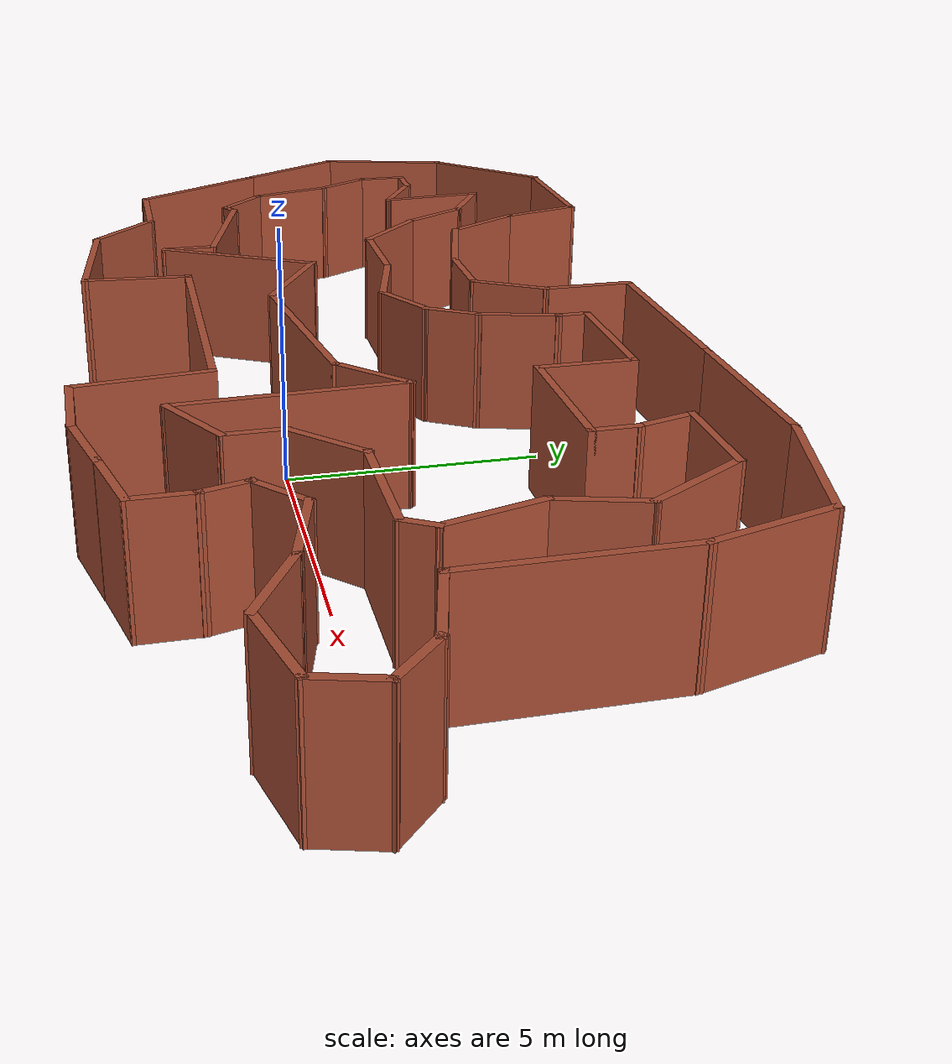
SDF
<?xml version='1.0'?>
<sdf version='1.7'>
  <model name='walls_for_students'>
    <pose>-2.26469 2.38398 0 0 -0 0</pose>
    <link name='Wall_0'>
      <collision name='Wall_0_Collision'>
        <geometry>
          <box>
            <size>2.3605 0.15 2.5</size>
          </box>
        </geometry>
        <pose>0 0 1.25 0 -0 0</pose>
      </collision>
      <visual name='Wall_0_Visual'>
        <pose>0 0 1.25 0 -0 0</pose>
        <geometry>
          <box>
            <size>2.3605 0.15 2.5</size>
          </box>
        </geometry>
        <material>
          <script>
            <uri>file://media/materials/scripts/gazebo.material</uri>
            <name>Gazebo/Bricks</name>
          </script>
          <ambient>1 1 1 1</ambient>
        </material>
        <meta>
          <layer>0</layer>
        </meta>
      </visual>
      <pose>-3.11683 -4.82228 0 0 -0 1.49065</pose>
    </link>
    <link name='Wall_1'>
      <collision name='Wall_1_Collision'>
        <geometry>
          <box>
            <size>5.75 0.15 2.5</size>
          </box>
        </geometry>
        <pose>0 0 1.25 0 -0 0</pose>
      </collision>
      <visual name='Wall_1_Visual'>
        <pose>0 0 1.25 0 -0 0</pose>
        <geometry>
          <box>
            <size>5.75 0.15 2.5</size>
          </box>
        </geometry>
        <material>
          <script>
            <uri>file://media/materials/scripts/gazebo.material</uri>
            <name>Gazebo/Bricks</name>
          </script>
          <ambient>1 1 1 1</ambient>
        </material>
        <meta>
          <layer>0</layer>
        </meta>
      </visual>
      <pose>-0.25784 -3.72058 0 0 -0 0</pose>
    </link>
    <link name='Wall_10'>
      <collision name='Wall_10_Collision'>
        <geometry>
          <box>
            <size>1.75 0.15 2.5</size>
          </box>
        </geometry>
        <pose>0 0 1.25 0 -0 0</pose>
      </collision>
      <visual name='Wall_10_Visual'>
        <pose>0 0 1.25 0 -0 0</pose>
        <geometry>
          <box>
            <size>1.75 0.15 2.5</size>
          </box>
        </geometry>
        <material>
          <script>
            <uri>file://media/materials/scripts/gazebo.material</uri>
            <name>Gazebo/Bricks</name>
          </script>
          <ambient>1 1 1 1</ambient>
        </material>
        <meta>
          <layer>0</layer>
        </meta>
      </visual>
      <pose>10.2515 -3.62415 0 0 -0 -0.523599</pose>
    </link>
    <link name='Wall_11'>
      <collision name='Wall_11_Collision'>
        <geometry>
          <box>
            <size>1.75 0.15 2.5</size>
          </box>
        </geometry>
        <pose>0 0 1.25 0 -0 0</pose>
      </collision>
      <visual name='Wall_11_Visual'>
        <pose>0 0 1.25 0 -0 0</pose>
        <geometry>
          <box>
            <size>1.75 0.15 2.5</size>
          </box>
        </geometry>
        <material>
          <script>
            <uri>file://media/materials/scripts/gazebo.material</uri>
            <name>Gazebo/Bricks</name>
          </script>
          <ambient>1 1 1 1</ambient>
        </material>
        <meta>
          <layer>0</layer>
        </meta>
      </visual>
      <pose>11.717 -3.8171 0 0 -0 0.261799</pose>
    </link>
    <link name='Wall_12'>
      <collision name='Wall_12_Collision'>
        <geometry>
          <box>
            <size>1.25 0.15 2.5</size>
          </box>
        </geometry>
        <pose>0 0 1.25 0 -0 0</pose>
      </collision>
      <visual name='Wall_12_Visual'>
        <pose>0 0 1.25 0 -0 0</pose>
        <geometry>
          <box>
            <size>1.25 0.15 2.5</size>
          </box>
        </geometry>
        <material>
          <script>
            <uri>file://media/materials/scripts/gazebo.material</uri>
            <name>Gazebo/Bricks</name>
          </script>
          <ambient>1 1 1 1</ambient>
        </material>
        <meta>
          <layer>0</layer>
        </meta>
      </visual>
      <pose>12.6321 -3.07878 0 0 -0 1.309</pose>
    </link>
    <link name='Wall_13'>
      <collision name='Wall_13_Collision'>
        <geometry>
          <box>
            <size>1.25 0.15 2.5</size>
          </box>
        </geometry>
        <pose>0 0 1.25 0 -0 0</pose>
      </collision>
      <visual name='Wall_13_Visual'>
        <pose>0 0 1.25 0 -0 0</pose>
        <geometry>
          <box>
            <size>1.25 0.15 2.5</size>
          </box>
        </geometry>
        <material>
          <script>
            <uri>file://media/materials/scripts/gazebo.material</uri>
            <name>Gazebo/Bricks</name>
          </script>
          <ambient>1 1 1 1</ambient>
        </material>
        <meta>
          <layer>0</layer>
        </meta>
      </visual>
      <pose>12.3855 -2.15862 0 0 -0 2.35619</pose>
    </link>
    <link name='Wall_14'>
      <collision name='Wall_14_Collision'>
        <geometry>
          <box>
            <size>1.75 0.15 2.5</size>
          </box>
        </geometry>
        <pose>0 0 1.25 0 -0 0</pose>
      </collision>
      <visual name='Wall_14_Visual'>
        <pose>0 0 1.25 0 -0 0</pose>
        <geometry>
          <box>
            <size>1.75 0.15 2.5</size>
          </box>
        </geometry>
        <material>
          <script>
            <uri>file://media/materials/scripts/gazebo.material</uri>
            <name>Gazebo/Bricks</name>
          </script>
          <ambient>1 1 1 1</ambient>
        </material>
        <meta>
          <layer>0</layer>
        </meta>
      </visual>
      <pose>11.2239 -1.56265 0 0 -0 2.87979</pose>
    </link>
    <link name='Wall_15'>
      <collision name='Wall_15_Collision'>
        <geometry>
          <box>
            <size>4 0.15 2.5</size>
          </box>
        </geometry>
        <pose>0 0 1.25 0 -0 0</pose>
      </collision>
      <visual name='Wall_15_Visual'>
        <pose>0 0 1.25 0 -0 0</pose>
        <geometry>
          <box>
            <size>4 0.15 2.5</size>
          </box>
        </geometry>
        <material>
          <script>
            <uri>file://media/materials/scripts/gazebo.material</uri>
            <name>Gazebo/Bricks</name>
          </script>
          <ambient>1 1 1 1</ambient>
        </material>
        <meta>
          <layer>0</layer>
        </meta>
      </visual>
      <pose>10.4512 0.569404 0 0 -0 1.5708</pose>
    </link>
    <link name='Wall_16'>
      <collision name='Wall_16_Collision'>
        <geometry>
          <box>
            <size>2.5 0.15 2.5</size>
          </box>
        </geometry>
        <pose>0 0 1.25 0 -0 0</pose>
      </collision>
      <visual name='Wall_16_Visual'>
        <pose>0 0 1.25 0 -0 0</pose>
        <geometry>
          <box>
            <size>2.5 0.15 2.5</size>
          </box>
        </geometry>
        <material>
          <script>
            <uri>file://media/materials/scripts/gazebo.material</uri>
            <name>Gazebo/Bricks</name>
          </script>
          <ambient>1 1 1 1</ambient>
        </material>
        <meta>
          <layer>0</layer>
        </meta>
      </visual>
      <pose>10.147 3.62937 0 0 -0 1.8326</pose>
    </link>
    <link name='Wall_17'>
      <collision name='Wall_17_Collision'>
        <geometry>
          <box>
            <size>3 0.15 2.5</size>
          </box>
        </geometry>
        <pose>0 0 1.25 0 -0 0</pose>
      </collision>
      <visual name='Wall_17_Visual'>
        <pose>0 0 1.25 0 -0 0</pose>
        <geometry>
          <box>
            <size>3 0.15 2.5</size>
          </box>
        </geometry>
        <material>
          <script>
            <uri>file://media/materials/scripts/gazebo.material</uri>
            <name>Gazebo/Bricks</name>
          </script>
          <ambient>1 1 1 1</ambient>
        </material>
        <meta>
          <layer>0</layer>
        </meta>
      </visual>
      <pose>8.46649 5.13315 0 0 -0 2.87979</pose>
    </link>
    <link name='Wall_18'>
      <collision name='Wall_18_Collision'>
        <geometry>
          <box>
            <size>3.75 0.15 2.5</size>
          </box>
        </geometry>
        <pose>0 0 1.25 0 -0 0</pose>
      </collision>
      <visual name='Wall_18_Visual'>
        <pose>0 0 1.25 0 -0 0</pose>
        <geometry>
          <box>
            <size>3.75 0.15 2.5</size>
          </box>
        </geometry>
        <material>
          <script>
            <uri>file://media/materials/scripts/gazebo.material</uri>
            <name>Gazebo/Bricks</name>
          </script>
          <ambient>1 1 1 1</ambient>
        </material>
        <meta>
          <layer>0</layer>
        </meta>
      </visual>
      <pose>5.29004 5.50196 0 0 -0 3.14159</pose>
    </link>
    <link name='Wall_19'>
      <collision name='Wall_19_Collision'>
        <geometry>
          <box>
            <size>4.25 0.15 2.5</size>
          </box>
        </geometry>
        <pose>0 0 1.25 0 -0 0</pose>
      </collision>
      <visual name='Wall_19_Visual'>
        <pose>0 0 1.25 0 -0 0</pose>
        <geometry>
          <box>
            <size>4.25 0.15 2.5</size>
          </box>
        </geometry>
        <material>
          <script>
            <uri>file://media/materials/scripts/gazebo.material</uri>
            <name>Gazebo/Bricks</name>
          </script>
          <ambient>1 1 1 1</ambient>
        </material>
        <meta>
          <layer>0</layer>
        </meta>
      </visual>
      <pose>1.44004 5.50196 0 0 -0 3.14159</pose>
    </link>
    <link name='Wall_2'>
      <collision name='Wall_2_Collision'>
        <geometry>
          <box>
            <size>2.72924 0.15 2.5</size>
          </box>
        </geometry>
        <pose>0 0 1.25 0 -0 0</pose>
      </collision>
      <visual name='Wall_2_Visual'>
        <pose>0 0 1.25 0 -0 0</pose>
        <geometry>
          <box>
            <size>2.72924 0.15 2.5</size>
          </box>
        </geometry>
        <material>
          <script>
            <uri>file://media/materials/scripts/gazebo.material</uri>
            <name>Gazebo/Bricks</name>
          </script>
          <ambient>1 1 1 1</ambient>
        </material>
        <meta>
          <layer>0</layer>
        </meta>
      </visual>
      <pose>2.69567 -5.00422 0 0 -0 -1.47448</pose>
    </link>
    <link name='Wall_20'>
      <collision name='Wall_20_Collision'>
        <geometry>
          <box>
            <size>2 0.15 2.5</size>
          </box>
        </geometry>
        <pose>0 0 1.25 0 -0 0</pose>
      </collision>
      <visual name='Wall_20_Visual'>
        <pose>0 0 1.25 0 -0 0</pose>
        <geometry>
          <box>
            <size>2 0.15 2.5</size>
          </box>
        </geometry>
        <material>
          <script>
            <uri>file://media/materials/scripts/gazebo.material</uri>
            <name>Gazebo/Bricks</name>
          </script>
          <ambient>1 1 1 1</ambient>
        </material>
        <meta>
          <layer>0</layer>
        </meta>
      </visual>
      <pose>-0.609957 4.57696 0 0 -0 -1.5708</pose>
    </link>
    <link name='Wall_21'>
      <collision name='Wall_21_Collision'>
        <geometry>
          <box>
            <size>1.75 0.15 2.5</size>
          </box>
        </geometry>
        <pose>0 0 1.25 0 -0 0</pose>
      </collision>
      <visual name='Wall_21_Visual'>
        <pose>0 0 1.25 0 -0 0</pose>
        <geometry>
          <box>
            <size>1.75 0.15 2.5</size>
          </box>
        </geometry>
        <material>
          <script>
            <uri>file://media/materials/scripts/gazebo.material</uri>
            <name>Gazebo/Bricks</name>
          </script>
          <ambient>1 1 1 1</ambient>
        </material>
        <meta>
          <layer>0</layer>
        </meta>
      </visual>
      <pose>-1.00996 2.95914 0 0 -0 -2.0944</pose>
    </link>
    <link name='Wall_22'>
      <collision name='Wall_22_Collision'>
        <geometry>
          <box>
            <size>1.75 0.15 2.5</size>
          </box>
        </geometry>
        <pose>0 0 1.25 0 -0 0</pose>
      </collision>
      <visual name='Wall_22_Visual'>
        <pose>0 0 1.25 0 -0 0</pose>
        <geometry>
          <box>
            <size>1.75 0.15 2.5</size>
          </box>
        </geometry>
        <material>
          <script>
            <uri>file://media/materials/scripts/gazebo.material</uri>
            <name>Gazebo/Bricks</name>
          </script>
          <ambient>1 1 1 1</ambient>
        </material>
        <meta>
          <layer>0</layer>
        </meta>
      </visual>
      <pose>-2.20996 2.26632 0 0 -0 3.14159</pose>
    </link>
    <link name='Wall_23'>
      <collision name='Wall_23_Collision'>
        <geometry>
          <box>
            <size>2.5 0.15 2.5</size>
          </box>
        </geometry>
        <pose>0 0 1.25 0 -0 0</pose>
      </collision>
      <visual name='Wall_23_Visual'>
        <pose>0 0 1.25 0 -0 0</pose>
        <geometry>
          <box>
            <size>2.5 0.15 2.5</size>
          </box>
        </geometry>
        <material>
          <script>
            <uri>file://media/materials/scripts/gazebo.material</uri>
            <name>Gazebo/Bricks</name>
          </script>
          <ambient>1 1 1 1</ambient>
        </material>
        <meta>
          <layer>0</layer>
        </meta>
      </visual>
      <pose>-4.14492 2.57044 0 0 -0 2.87979</pose>
    </link>
    <link name='Wall_24'>
      <collision name='Wall_24_Collision'>
        <geometry>
          <box>
            <size>2 0.15 2.5</size>
          </box>
        </geometry>
        <pose>0 0 1.25 0 -0 0</pose>
      </collision>
      <visual name='Wall_24_Visual'>
        <pose>0 0 1.25 0 -0 0</pose>
        <geometry>
          <box>
            <size>2 0.15 2.5</size>
          </box>
        </geometry>
        <material>
          <script>
            <uri>file://media/materials/scripts/gazebo.material</uri>
            <name>Gazebo/Bricks</name>
          </script>
          <ambient>1 1 1 1</ambient>
        </material>
        <meta>
          <layer>0</layer>
        </meta>
      </visual>
      <pose>-5.74238 3.67562 0 0 -0 2.0944</pose>
    </link>
    <link name='Wall_25'>
      <collision name='Wall_25_Collision'>
        <geometry>
          <box>
            <size>2 0.15 2.5</size>
          </box>
        </geometry>
        <pose>0 0 1.25 0 -0 0</pose>
      </collision>
      <visual name='Wall_25_Visual'>
        <pose>0 0 1.25 0 -0 0</pose>
        <geometry>
          <box>
            <size>2 0.15 2.5</size>
          </box>
        </geometry>
        <material>
          <script>
            <uri>file://media/materials/scripts/gazebo.material</uri>
            <name>Gazebo/Bricks</name>
          </script>
          <ambient>1 1 1 1</ambient>
        </material>
        <meta>
          <layer>0</layer>
        </meta>
      </visual>
      <pose>-6.44429 5.37018 0 0 -0 1.8326</pose>
    </link>
    <link name='Wall_26'>
      <collision name='Wall_26_Collision'>
        <geometry>
          <box>
            <size>3.25 0.15 2.5</size>
          </box>
        </geometry>
        <pose>0 0 1.25 0 -0 0</pose>
      </collision>
      <visual name='Wall_26_Visual'>
        <pose>0 0 1.25 0 -0 0</pose>
        <geometry>
          <box>
            <size>3.25 0.15 2.5</size>
          </box>
        </geometry>
        <material>
          <script>
            <uri>file://media/materials/scripts/gazebo.material</uri>
            <name>Gazebo/Bricks</name>
          </script>
          <ambient>1 1 1 1</ambient>
        </material>
        <meta>
          <layer>0</layer>
        </meta>
      </visual>
      <pose>-8.2337 6.26366 0 0 -0 3.14159</pose>
    </link>
    <link name='Wall_27'>
      <collision name='Wall_27_Collision'>
        <geometry>
          <box>
            <size>3.25 0.15 2.5</size>
          </box>
        </geometry>
        <pose>0 0 1.25 0 -0 0</pose>
      </collision>
      <visual name='Wall_27_Visual'>
        <pose>0 0 1.25 0 -0 0</pose>
        <geometry>
          <box>
            <size>3.25 0.15 2.5</size>
          </box>
        </geometry>
        <material>
          <script>
            <uri>file://media/materials/scripts/gazebo.material</uri>
            <name>Gazebo/Bricks</name>
          </script>
          <ambient>1 1 1 1</ambient>
        </material>
        <meta>
          <layer>0</layer>
        </meta>
      </visual>
      <pose>-10.8797 5.16764 0 0 -0 -2.35619</pose>
    </link>
    <link name='Wall_28'>
      <collision name='Wall_28_Collision'>
        <geometry>
          <box>
            <size>3.25 0.15 2.5</size>
          </box>
        </geometry>
        <pose>0 0 1.25 0 -0 0</pose>
      </collision>
      <visual name='Wall_28_Visual'>
        <pose>0 0 1.25 0 -0 0</pose>
        <geometry>
          <box>
            <size>3.25 0.15 2.5</size>
          </box>
        </geometry>
        <material>
          <script>
            <uri>file://media/materials/scripts/gazebo.material</uri>
            <name>Gazebo/Bricks</name>
          </script>
          <ambient>1 1 1 1</ambient>
        </material>
        <meta>
          <layer>0</layer>
        </meta>
      </visual>
      <pose>-12.3769 2.57444 0 0 -0 -1.8326</pose>
    </link>
    <link name='Wall_29'>
      <collision name='Wall_29_Collision'>
        <geometry>
          <box>
            <size>3 0.15 2.5</size>
          </box>
        </geometry>
        <pose>0 0 1.25 0 -0 0</pose>
      </collision>
      <visual name='Wall_29_Visual'>
        <pose>0 0 1.25 0 -0 0</pose>
        <geometry>
          <box>
            <size>3 0.15 2.5</size>
          </box>
        </geometry>
        <material>
          <script>
            <uri>file://media/materials/scripts/gazebo.material</uri>
            <name>Gazebo/Bricks</name>
          </script>
          <ambient>1 1 1 1</ambient>
        </material>
        <meta>
          <layer>0</layer>
        </meta>
      </visual>
      <pose>-12.0656 -0.156829 0 0 -0 -1.0472</pose>
    </link>
    <link name='Wall_3'>
      <collision name='Wall_3_Collision'>
        <geometry>
          <box>
            <size>1.81374 0.15 2.5</size>
          </box>
        </geometry>
        <pose>0 0 1.25 0 -0 0</pose>
      </collision>
      <visual name='Wall_3_Visual'>
        <pose>0 0 1.25 0 -0 0</pose>
        <geometry>
          <box>
            <size>1.81374 0.15 2.5</size>
          </box>
        </geometry>
        <material>
          <script>
            <uri>file://media/materials/scripts/gazebo.material</uri>
            <name>Gazebo/Bricks</name>
          </script>
          <ambient>1 1 1 1</ambient>
        </material>
        <meta>
          <layer>0</layer>
        </meta>
      </visual>
      <pose>3.65142 -6.27252 0 0 -0 0.018441</pose>
    </link>
    <link name='Wall_30'>
      <collision name='Wall_30_Collision'>
        <geometry>
          <box>
            <size>3.5 0.15 2.5</size>
          </box>
        </geometry>
        <pose>0 0 1.25 0 -0 0</pose>
      </collision>
      <visual name='Wall_30_Visual'>
        <pose>0 0 1.25 0 -0 0</pose>
        <geometry>
          <box>
            <size>3.5 0.15 2.5</size>
          </box>
        </geometry>
        <material>
          <script>
            <uri>file://media/materials/scripts/gazebo.material</uri>
            <name>Gazebo/Bricks</name>
          </script>
          <ambient>1 1 1 1</ambient>
        </material>
        <meta>
          <layer>0</layer>
        </meta>
      </visual>
      <pose>-10.5156 -2.84151 0 0 -0 -1.0472</pose>
    </link>
    <link name='Wall_31'>
      <collision name='Wall_31_Collision'>
        <geometry>
          <box>
            <size>2.25 0.15 2.5</size>
          </box>
        </geometry>
        <pose>0 0 1.25 0 -0 0</pose>
      </collision>
      <visual name='Wall_31_Visual'>
        <pose>0 0 1.25 0 -0 0</pose>
        <geometry>
          <box>
            <size>2.25 0.15 2.5</size>
          </box>
        </geometry>
        <material>
          <script>
            <uri>file://media/materials/scripts/gazebo.material</uri>
            <name>Gazebo/Bricks</name>
          </script>
          <ambient>1 1 1 1</ambient>
        </material>
        <meta>
          <layer>0</layer>
        </meta>
      </visual>
      <pose>-8.62807 -4.2921 0 0 -0 0</pose>
    </link>
    <link name='Wall_32'>
      <collision name='Wall_32_Collision'>
        <geometry>
          <box>
            <size>2 0.15 2.5</size>
          </box>
        </geometry>
        <pose>0 0 1.25 0 -0 0</pose>
      </collision>
      <visual name='Wall_32_Visual'>
        <pose>0 0 1.25 0 -0 0</pose>
        <geometry>
          <box>
            <size>2 0.15 2.5</size>
          </box>
        </geometry>
        <material>
          <script>
            <uri>file://media/materials/scripts/gazebo.material</uri>
            <name>Gazebo/Bricks</name>
          </script>
          <ambient>1 1 1 1</ambient>
        </material>
        <meta>
          <layer>0</layer>
        </meta>
      </visual>
      <pose>-6.92399 -4.94618 0 0 -0 -0.785398</pose>
    </link>
    <link name='Wall_33'>
      <collision name='Wall_33_Collision'>
        <geometry>
          <box>
            <size>3.23166 0.15 2.5</size>
          </box>
        </geometry>
        <pose>0 0 1.25 0 -0 0</pose>
      </collision>
      <visual name='Wall_33_Visual'>
        <pose>0 0 1.25 0 -0 0</pose>
        <geometry>
          <box>
            <size>3.23166 0.15 2.5</size>
          </box>
        </geometry>
        <material>
          <script>
            <uri>file://media/materials/scripts/gazebo.material</uri>
            <name>Gazebo/Bricks</name>
          </script>
          <ambient>1 1 1 1</ambient>
        </material>
        <meta>
          <layer>0</layer>
        </meta>
      </visual>
      <pose>-4.73762 -5.76211 0 0 -0 -0.105246</pose>
    </link>
    <link name='Wall_35'>
      <collision name='Wall_35_Collision'>
        <geometry>
          <box>
            <size>1.75 0.15 2.5</size>
          </box>
        </geometry>
        <pose>0 0 1.25 0 -0 0</pose>
      </collision>
      <visual name='Wall_35_Visual'>
        <pose>0 0 1.25 0 -0 0</pose>
        <geometry>
          <box>
            <size>1.75 0.15 2.5</size>
          </box>
        </geometry>
        <material>
          <script>
            <uri>file://media/materials/scripts/gazebo.material</uri>
            <name>Gazebo/Bricks</name>
          </script>
          <ambient>1 1 1 1</ambient>
        </material>
        <meta>
          <layer>0</layer>
        </meta>
      </visual>
      <pose>-7.76709 3.77879 0 0 -0 -0.523599</pose>
    </link>
    <link name='Wall_36'>
      <collision name='Wall_36_Collision'>
        <geometry>
          <box>
            <size>1.75 0.15 2.5</size>
          </box>
        </geometry>
        <pose>0 0 1.25 0 -0 0</pose>
      </collision>
      <visual name='Wall_36_Visual'>
        <pose>0 0 1.25 0 -0 0</pose>
        <geometry>
          <box>
            <size>1.75 0.15 2.5</size>
          </box>
        </geometry>
        <material>
          <script>
            <uri>file://media/materials/scripts/gazebo.material</uri>
            <name>Gazebo/Bricks</name>
          </script>
          <ambient>1 1 1 1</ambient>
        </material>
        <meta>
          <layer>0</layer>
        </meta>
      </visual>
      <pose>-6.67427 2.68597 0 0 -0 -1.0472</pose>
    </link>
    <link name='Wall_37'>
      <collision name='Wall_37_Collision'>
        <geometry>
          <box>
            <size>2 0.15 2.5</size>
          </box>
        </geometry>
        <pose>0 0 1.25 0 -0 0</pose>
      </collision>
      <visual name='Wall_37_Visual'>
        <pose>0 0 1.25 0 -0 0</pose>
        <geometry>
          <box>
            <size>2 0.15 2.5</size>
          </box>
        </geometry>
        <material>
          <script>
            <uri>file://media/materials/scripts/gazebo.material</uri>
            <name>Gazebo/Bricks</name>
          </script>
          <ambient>1 1 1 1</ambient>
        </material>
        <meta>
          <layer>0</layer>
        </meta>
      </visual>
      <pose>-5.6202 1.33908 0 0 -0 -0.785398</pose>
    </link>
    <link name='Wall_38'>
      <collision name='Wall_38_Collision'>
        <geometry>
          <box>
            <size>2.25 0.15 2.5</size>
          </box>
        </geometry>
        <pose>0 0 1.25 0 -0 0</pose>
      </collision>
      <visual name='Wall_38_Visual'>
        <pose>0 0 1.25 0 -0 0</pose>
        <geometry>
          <box>
            <size>2.25 0.15 2.5</size>
          </box>
        </geometry>
        <material>
          <script>
            <uri>file://media/materials/scripts/gazebo.material</uri>
            <name>Gazebo/Bricks</name>
          </script>
          <ambient>1 1 1 1</ambient>
        </material>
        <meta>
          <layer>0</layer>
        </meta>
      </visual>
      <pose>-3.91613 0.685001 0 0 -0 0</pose>
    </link>
    <link name='Wall_39'>
      <collision name='Wall_39_Collision'>
        <geometry>
          <box>
            <size>2 0.15 2.5</size>
          </box>
        </geometry>
        <pose>0 0 1.25 0 -0 0</pose>
      </collision>
      <visual name='Wall_39_Visual'>
        <pose>0 0 1.25 0 -0 0</pose>
        <geometry>
          <box>
            <size>2 0.15 2.5</size>
          </box>
        </geometry>
        <material>
          <script>
            <uri>file://media/materials/scripts/gazebo.material</uri>
            <name>Gazebo/Bricks</name>
          </script>
          <ambient>1 1 1 1</ambient>
        </material>
        <meta>
          <layer>0</layer>
        </meta>
      </visual>
      <pose>-1.97264 0.445594 0 0 -0 -0.261799</pose>
    </link>
    <link name='Wall_4'>
      <collision name='Wall_4_Collision'>
        <geometry>
          <box>
            <size>1.64096 0.15 2.5</size>
          </box>
        </geometry>
        <pose>0 0 1.25 0 -0 0</pose>
      </collision>
      <visual name='Wall_4_Visual'>
        <pose>0 0 1.25 0 -0 0</pose>
        <geometry>
          <box>
            <size>1.64096 0.15 2.5</size>
          </box>
        </geometry>
        <material>
          <script>
            <uri>file://media/materials/scripts/gazebo.material</uri>
            <name>Gazebo/Bricks</name>
          </script>
          <ambient>1 1 1 1</ambient>
        </material>
        <meta>
          <layer>0</layer>
        </meta>
      </visual>
      <pose>5.23272 -6.06424 0 0 -0 0.261799</pose>
    </link>
    <link name='Wall_40'>
      <collision name='Wall_40_Collision'>
        <geometry>
          <box>
            <size>1.5 0.15 2.5</size>
          </box>
        </geometry>
        <pose>0 0 1.25 0 -0 0</pose>
      </collision>
      <visual name='Wall_40_Visual'>
        <pose>0 0 1.25 0 -0 0</pose>
        <geometry>
          <box>
            <size>1.5 0.15 2.5</size>
          </box>
        </geometry>
        <material>
          <script>
            <uri>file://media/materials/scripts/gazebo.material</uri>
            <name>Gazebo/Bricks</name>
          </script>
          <ambient>1 1 1 1</ambient>
        </material>
        <meta>
          <layer>0</layer>
        </meta>
      </visual>
      <pose>-0.494596 0.543686 0 0 -0 0.523599</pose>
    </link>
    <link name='Wall_41'>
      <collision name='Wall_41_Collision'>
        <geometry>
          <box>
            <size>1.25 0.15 2.5</size>
          </box>
        </geometry>
        <pose>0 0 1.25 0 -0 0</pose>
      </collision>
      <visual name='Wall_41_Visual'>
        <pose>0 0 1.25 0 -0 0</pose>
        <geometry>
          <box>
            <size>1.25 0.15 2.5</size>
          </box>
        </geometry>
        <material>
          <script>
            <uri>file://media/materials/scripts/gazebo.material</uri>
            <name>Gazebo/Bricks</name>
          </script>
          <ambient>1 1 1 1</ambient>
        </material>
        <meta>
          <layer>0</layer>
        </meta>
      </visual>
      <pose>0.364971 1.3575 0 0 -0 1.0472</pose>
    </link>
    <link name='Wall_42'>
      <collision name='Wall_42_Collision'>
        <geometry>
          <box>
            <size>1.75 0.15 2.5</size>
          </box>
        </geometry>
        <pose>0 0 1.25 0 -0 0</pose>
      </collision>
      <visual name='Wall_42_Visual'>
        <pose>0 0 1.25 0 -0 0</pose>
        <geometry>
          <box>
            <size>1.75 0.15 2.5</size>
          </box>
        </geometry>
        <material>
          <script>
            <uri>file://media/materials/scripts/gazebo.material</uri>
            <name>Gazebo/Bricks</name>
          </script>
          <ambient>1 1 1 1</ambient>
        </material>
        <meta>
          <layer>0</layer>
        </meta>
      </visual>
      <pose>0.847026 2.60656 0 0 -0 1.309</pose>
    </link>
    <link name='Wall_43'>
      <collision name='Wall_43_Collision'>
        <geometry>
          <box>
            <size>0.75 0.15 2.5</size>
          </box>
        </geometry>
        <pose>0 0 1.25 0 -0 0</pose>
      </collision>
      <visual name='Wall_43_Visual'>
        <pose>0 0 1.25 0 -0 0</pose>
        <geometry>
          <box>
            <size>0.75 0.15 2.5</size>
          </box>
        </geometry>
        <material>
          <script>
            <uri>file://media/materials/scripts/gazebo.material</uri>
            <name>Gazebo/Bricks</name>
          </script>
          <ambient>1 1 1 1</ambient>
        </material>
        <meta>
          <layer>0</layer>
        </meta>
      </visual>
      <pose>1.05408 3.6793 0 0 -0 1.5708</pose>
    </link>
    <link name='Wall_44'>
      <collision name='Wall_44_Collision'>
        <geometry>
          <box>
            <size>2.75 0.15 2.5</size>
          </box>
        </geometry>
        <pose>0 0 1.25 0 -0 0</pose>
      </collision>
      <visual name='Wall_44_Visual'>
        <pose>0 0 1.25 0 -0 0</pose>
        <geometry>
          <box>
            <size>2.75 0.15 2.5</size>
          </box>
        </geometry>
        <material>
          <script>
            <uri>file://media/materials/scripts/gazebo.material</uri>
            <name>Gazebo/Bricks</name>
          </script>
          <ambient>1 1 1 1</ambient>
        </material>
        <meta>
          <layer>0</layer>
        </meta>
      </visual>
      <pose>2.35408 3.9793 0 0 -0 0</pose>
    </link>
    <link name='Wall_45'>
      <collision name='Wall_45_Collision'>
        <geometry>
          <box>
            <size>2 0.15 2.5</size>
          </box>
        </geometry>
        <pose>0 0 1.25 0 -0 0</pose>
      </collision>
      <visual name='Wall_45_Visual'>
        <pose>0 0 1.25 0 -0 0</pose>
        <geometry>
          <box>
            <size>2 0.15 2.5</size>
          </box>
        </geometry>
        <material>
          <script>
            <uri>file://media/materials/scripts/gazebo.material</uri>
            <name>Gazebo/Bricks</name>
          </script>
          <ambient>1 1 1 1</ambient>
        </material>
        <meta>
          <layer>0</layer>
        </meta>
      </visual>
      <pose>3.65408 3.0543 0 0 -0 -1.5708</pose>
    </link>
    <link name='Wall_46'>
      <collision name='Wall_46_Collision'>
        <geometry>
          <box>
            <size>3 0.15 2.5</size>
          </box>
        </geometry>
        <pose>0 0 1.25 0 -0 0</pose>
      </collision>
      <visual name='Wall_46_Visual'>
        <pose>0 0 1.25 0 -0 0</pose>
        <geometry>
          <box>
            <size>3 0.15 2.5</size>
          </box>
        </geometry>
        <material>
          <script>
            <uri>file://media/materials/scripts/gazebo.material</uri>
            <name>Gazebo/Bricks</name>
          </script>
          <ambient>1 1 1 1</ambient>
        </material>
        <meta>
          <layer>0</layer>
        </meta>
      </visual>
      <pose>5.07908 2.12929 0 0 -0 0</pose>
    </link>
    <link name='Wall_47'>
      <collision name='Wall_47_Collision'>
        <geometry>
          <box>
            <size>1 0.15 2.5</size>
          </box>
        </geometry>
        <pose>0 0 1.25 0 -0 0</pose>
      </collision>
      <visual name='Wall_47_Visual'>
        <pose>0 0 1.25 0 -0 0</pose>
        <geometry>
          <box>
            <size>1 0.15 2.5</size>
          </box>
        </geometry>
        <material>
          <script>
            <uri>file://media/materials/scripts/gazebo.material</uri>
            <name>Gazebo/Bricks</name>
          </script>
          <ambient>1 1 1 1</ambient>
        </material>
        <meta>
          <layer>0</layer>
        </meta>
      </visual>
      <pose>6.50408 2.5543 0 0 -0 1.5708</pose>
    </link>
    <link name='Wall_48'>
      <collision name='Wall_48_Collision'>
        <geometry>
          <box>
            <size>1.25 0.15 2.5</size>
          </box>
        </geometry>
        <pose>0 0 1.25 0 -0 0</pose>
      </collision>
      <visual name='Wall_48_Visual'>
        <pose>0 0 1.25 0 -0 0</pose>
        <geometry>
          <box>
            <size>1.25 0.15 2.5</size>
          </box>
        </geometry>
        <material>
          <script>
            <uri>file://media/materials/scripts/gazebo.material</uri>
            <name>Gazebo/Bricks</name>
          </script>
          <ambient>1 1 1 1</ambient>
        </material>
        <meta>
          <layer>0</layer>
        </meta>
      </visual>
      <pose>6.36173 3.51056 0 0 -0 1.8326</pose>
    </link>
    <link name='Wall_49'>
      <collision name='Wall_49_Collision'>
        <geometry>
          <box>
            <size>2 0.15 2.5</size>
          </box>
        </geometry>
        <pose>0 0 1.25 0 -0 0</pose>
      </collision>
      <visual name='Wall_49_Visual'>
        <pose>0 0 1.25 0 -0 0</pose>
        <geometry>
          <box>
            <size>2 0.15 2.5</size>
          </box>
        </geometry>
        <material>
          <script>
            <uri>file://media/materials/scripts/gazebo.material</uri>
            <name>Gazebo/Bricks</name>
          </script>
          <ambient>1 1 1 1</ambient>
        </material>
        <meta>
          <layer>0</layer>
        </meta>
      </visual>
      <pose>7.14438 4.04181 0 0 -0 0</pose>
    </link>
    <link name='Wall_5'>
      <collision name='Wall_5_Collision'>
        <geometry>
          <box>
            <size>1.68082 0.15 2.5</size>
          </box>
        </geometry>
        <pose>0 0 1.25 0 -0 0</pose>
      </collision>
      <visual name='Wall_5_Visual'>
        <pose>0 0 1.25 0 -0 0</pose>
        <geometry>
          <box>
            <size>1.68082 0.15 2.5</size>
          </box>
        </geometry>
        <material>
          <script>
            <uri>file://media/materials/scripts/gazebo.material</uri>
            <name>Gazebo/Bricks</name>
          </script>
          <ambient>1 1 1 1</ambient>
        </material>
        <meta>
          <layer>0</layer>
        </meta>
      </visual>
      <pose>6.66432 -5.67957 0 0 -0 0.25317</pose>
    </link>
    <link name='Wall_50'>
      <collision name='Wall_50_Collision'>
        <geometry>
          <box>
            <size>2.25 0.15 2.5</size>
          </box>
        </geometry>
        <pose>0 0 1.25 0 -0 0</pose>
      </collision>
      <visual name='Wall_50_Visual'>
        <pose>0 0 1.25 0 -0 0</pose>
        <geometry>
          <box>
            <size>2.25 0.15 2.5</size>
          </box>
        </geometry>
        <material>
          <script>
            <uri>file://media/materials/scripts/gazebo.material</uri>
            <name>Gazebo/Bricks</name>
          </script>
          <ambient>1 1 1 1</ambient>
        </material>
        <meta>
          <layer>0</layer>
        </meta>
      </visual>
      <pose>8.59438 3.13249 0 0 -0 -1.0472</pose>
    </link>
    <link name='Wall_51'>
      <collision name='Wall_51_Collision'>
        <geometry>
          <box>
            <size>1.75 0.15 2.5</size>
          </box>
        </geometry>
        <pose>0 0 1.25 0 -0 0</pose>
      </collision>
      <visual name='Wall_51_Visual'>
        <pose>0 0 1.25 0 -0 0</pose>
        <geometry>
          <box>
            <size>1.75 0.15 2.5</size>
          </box>
        </geometry>
        <material>
          <script>
            <uri>file://media/materials/scripts/gazebo.material</uri>
            <name>Gazebo/Bricks</name>
          </script>
          <ambient>1 1 1 1</ambient>
        </material>
        <meta>
          <layer>0</layer>
        </meta>
      </visual>
      <pose>8.91232 1.45042 0 0 -0 -1.8326</pose>
    </link>
    <link name='Wall_52'>
      <collision name='Wall_52_Collision'>
        <geometry>
          <box>
            <size>2 0.15 2.5</size>
          </box>
        </geometry>
        <pose>0 0 1.25 0 -0 0</pose>
      </collision>
      <visual name='Wall_52_Visual'>
        <pose>0 0 1.25 0 -0 0</pose>
        <geometry>
          <box>
            <size>2 0.15 2.5</size>
          </box>
        </geometry>
        <material>
          <script>
            <uri>file://media/materials/scripts/gazebo.material</uri>
            <name>Gazebo/Bricks</name>
          </script>
          <ambient>1 1 1 1</ambient>
        </material>
        <meta>
          <layer>0</layer>
        </meta>
      </visual>
      <pose>8.94468 -0.215802 0 0 -0 -1.309</pose>
    </link>
    <link name='Wall_53'>
      <collision name='Wall_53_Collision'>
        <geometry>
          <box>
            <size>0.75 0.15 2.5</size>
          </box>
        </geometry>
        <pose>0 0 1.25 0 -0 0</pose>
      </collision>
      <visual name='Wall_53_Visual'>
        <pose>0 0 1.25 0 -0 0</pose>
        <geometry>
          <box>
            <size>0.75 0.15 2.5</size>
          </box>
        </geometry>
        <material>
          <script>
            <uri>file://media/materials/scripts/gazebo.material</uri>
            <name>Gazebo/Bricks</name>
          </script>
          <ambient>1 1 1 1</ambient>
        </material>
        <meta>
          <layer>0</layer>
        </meta>
      </visual>
      <pose>9.03408 -1.36909 0 0 -0 -2.0944</pose>
    </link>
    <link name='Wall_54'>
      <collision name='Wall_54_Collision'>
        <geometry>
          <box>
            <size>2.5 0.15 2.5</size>
          </box>
        </geometry>
        <pose>0 0 1.25 0 -0 0</pose>
      </collision>
      <visual name='Wall_54_Visual'>
        <pose>0 0 1.25 0 -0 0</pose>
        <geometry>
          <box>
            <size>2.5 0.15 2.5</size>
          </box>
        </geometry>
        <material>
          <script>
            <uri>file://media/materials/scripts/gazebo.material</uri>
            <name>Gazebo/Bricks</name>
          </script>
          <ambient>1 1 1 1</ambient>
        </material>
        <meta>
          <layer>0</layer>
        </meta>
      </visual>
      <pose>7.70908 -1.6289 0 0 -0 3.14159</pose>
    </link>
    <link name='Wall_55'>
      <collision name='Wall_55_Collision'>
        <geometry>
          <box>
            <size>1.75 0.15 2.5</size>
          </box>
        </geometry>
        <pose>0 0 1.25 0 -0 0</pose>
      </collision>
      <visual name='Wall_55_Visual'>
        <pose>0 0 1.25 0 -0 0</pose>
        <geometry>
          <box>
            <size>1.75 0.15 2.5</size>
          </box>
        </geometry>
        <material>
          <script>
            <uri>file://media/materials/scripts/gazebo.material</uri>
            <name>Gazebo/Bricks</name>
          </script>
          <ambient>1 1 1 1</ambient>
        </material>
        <meta>
          <layer>0</layer>
        </meta>
      </visual>
      <pose>5.9684 -2.19458 0 0 -0 -2.35619</pose>
    </link>
    <link name='Wall_56'>
      <collision name='Wall_56_Collision'>
        <geometry>
          <box>
            <size>1.25 0.15 2.5</size>
          </box>
        </geometry>
        <pose>0 0 1.25 0 -0 0</pose>
      </collision>
      <visual name='Wall_56_Visual'>
        <pose>0 0 1.25 0 -0 0</pose>
        <geometry>
          <box>
            <size>1.25 0.15 2.5</size>
          </box>
        </geometry>
        <material>
          <script>
            <uri>file://media/materials/scripts/gazebo.material</uri>
            <name>Gazebo/Bricks</name>
          </script>
          <ambient>1 1 1 1</ambient>
        </material>
        <meta>
          <layer>0</layer>
        </meta>
      </visual>
      <pose>5.40271 -3.31027 0 0 -0 -1.5708</pose>
    </link>
    <link name='Wall_57'>
      <collision name='Wall_57_Collision'>
        <geometry>
          <box>
            <size>1.75 0.15 2.5</size>
          </box>
        </geometry>
        <pose>0 0 1.25 0 -0 0</pose>
      </collision>
      <visual name='Wall_57_Visual'>
        <pose>0 0 1.25 0 -0 0</pose>
        <geometry>
          <box>
            <size>1.75 0.15 2.5</size>
          </box>
        </geometry>
        <material>
          <script>
            <uri>file://media/materials/scripts/gazebo.material</uri>
            <name>Gazebo/Bricks</name>
          </script>
          <ambient>1 1 1 1</ambient>
        </material>
        <meta>
          <layer>0</layer>
        </meta>
      </visual>
      <pose>4.70989 -4.26027 0 0 -0 -2.61799</pose>
    </link>
    <link name='Wall_58'>
      <collision name='Wall_58_Collision'>
        <geometry>
          <box>
            <size>4.45948 0.15 2.5</size>
          </box>
        </geometry>
        <pose>0 0 1.25 0 -0 0</pose>
      </collision>
      <visual name='Wall_58_Visual'>
        <pose>0 0 1.25 0 -0 0</pose>
        <geometry>
          <box>
            <size>4.45948 0.15 2.5</size>
          </box>
        </geometry>
        <material>
          <script>
            <uri>file://media/materials/scripts/gazebo.material</uri>
            <name>Gazebo/Bricks</name>
          </script>
          <ambient>1 1 1 1</ambient>
        </material>
        <meta>
          <layer>0</layer>
        </meta>
      </visual>
      <pose>3.93338 -2.50716 0 0 -0 1.60965</pose>
    </link>
    <link name='Wall_59'>
      <collision name='Wall_59_Collision'>
        <geometry>
          <box>
            <size>1.75 0.15 2.5</size>
          </box>
        </geometry>
        <pose>0 0 1.25 0 -0 0</pose>
      </collision>
      <visual name='Wall_59_Visual'>
        <pose>0 0 1.25 0 -0 0</pose>
        <geometry>
          <box>
            <size>1.75 0.15 2.5</size>
          </box>
        </geometry>
        <material>
          <script>
            <uri>file://media/materials/scripts/gazebo.material</uri>
            <name>Gazebo/Bricks</name>
          </script>
          <ambient>1 1 1 1</ambient>
        </material>
        <meta>
          <layer>0</layer>
        </meta>
      </visual>
      <pose>3.28399 -0.890238 0 0 -0 -2.35619</pose>
    </link>
    <link name='Wall_6'>
      <collision name='Wall_6_Collision'>
        <geometry>
          <box>
            <size>1.25 0.15 2.5</size>
          </box>
        </geometry>
        <pose>0 0 1.25 0 -0 0</pose>
      </collision>
      <visual name='Wall_6_Visual'>
        <pose>0 0 1.25 0 -0 0</pose>
        <geometry>
          <box>
            <size>1.25 0.15 2.5</size>
          </box>
        </geometry>
        <material>
          <script>
            <uri>file://media/materials/scripts/gazebo.material</uri>
            <name>Gazebo/Bricks</name>
          </script>
          <ambient>1 1 1 1</ambient>
        </material>
        <meta>
          <layer>0</layer>
        </meta>
      </visual>
      <pose>7.40533 -4.93786 0 0 -0 1.5708</pose>
    </link>
    <link name='Wall_60'>
      <collision name='Wall_60_Collision'>
        <geometry>
          <box>
            <size>4.2878 0.15 2.5</size>
          </box>
        </geometry>
        <pose>0 0 1.25 0 -0 0</pose>
      </collision>
      <visual name='Wall_60_Visual'>
        <pose>0 0 1.25 0 -0 0</pose>
        <geometry>
          <box>
            <size>4.2878 0.15 2.5</size>
          </box>
        </geometry>
        <material>
          <script>
            <uri>file://media/materials/scripts/gazebo.material</uri>
            <name>Gazebo/Bricks</name>
          </script>
          <ambient>1 1 1 1</ambient>
        </material>
        <meta>
          <layer>0</layer>
        </meta>
      </visual>
      <pose>0.671773 -1.7888 0 0 -0 -2.99442</pose>
    </link>
    <link name='Wall_61'>
      <collision name='Wall_61_Collision'>
        <geometry>
          <box>
            <size>2.5 0.15 2.5</size>
          </box>
        </geometry>
        <pose>0 0 1.25 0 -0 0</pose>
      </collision>
      <visual name='Wall_61_Visual'>
        <pose>0 0 1.25 0 -0 0</pose>
        <geometry>
          <box>
            <size>2.5 0.15 2.5</size>
          </box>
        </geometry>
        <material>
          <script>
            <uri>file://media/materials/scripts/gazebo.material</uri>
            <name>Gazebo/Bricks</name>
          </script>
          <ambient>1 1 1 1</ambient>
        </material>
        <meta>
          <layer>0</layer>
        </meta>
      </visual>
      <pose>-2.42184 -1.50469 0 0 -0 2.61799</pose>
    </link>
    <link name='Wall_62'>
      <collision name='Wall_62_Collision'>
        <geometry>
          <box>
            <size>3.74324 0.15 2.5</size>
          </box>
        </geometry>
        <pose>0 0 1.25 0 -0 0</pose>
      </collision>
      <visual name='Wall_62_Visual'>
        <pose>0 0 1.25 0 -0 0</pose>
        <geometry>
          <box>
            <size>3.74324 0.15 2.5</size>
          </box>
        </geometry>
        <material>
          <script>
            <uri>file://media/materials/scripts/gazebo.material</uri>
            <name>Gazebo/Bricks</name>
          </script>
          <ambient>1 1 1 1</ambient>
        </material>
        <meta>
          <layer>0</layer>
        </meta>
      </visual>
      <pose>-4.26891 -2.49516 0 0 -0 -2.0693</pose>
    </link>
    <link name='Wall_63'>
      <collision name='Wall_63_Collision'>
        <geometry>
          <box>
            <size>1.25 0.15 2.5</size>
          </box>
        </geometry>
        <pose>0 0 1.25 0 -0 0</pose>
      </collision>
      <visual name='Wall_63_Visual'>
        <pose>0 0 1.25 0 -0 0</pose>
        <geometry>
          <box>
            <size>1.25 0.15 2.5</size>
          </box>
        </geometry>
        <material>
          <script>
            <uri>file://media/materials/scripts/gazebo.material</uri>
            <name>Gazebo/Bricks</name>
          </script>
          <ambient>1 1 1 1</ambient>
        </material>
        <meta>
          <layer>0</layer>
        </meta>
      </visual>
      <pose>-5.1279 -3.52312 0 0 -0 1.5708</pose>
    </link>
    <link name='Wall_64'>
      <collision name='Wall_64_Collision'>
        <geometry>
          <box>
            <size>3.25 0.15 2.5</size>
          </box>
        </geometry>
        <pose>0 0 1.25 0 -0 0</pose>
      </collision>
      <visual name='Wall_64_Visual'>
        <pose>0 0 1.25 0 -0 0</pose>
        <geometry>
          <box>
            <size>3.25 0.15 2.5</size>
          </box>
        </geometry>
        <material>
          <script>
            <uri>file://media/materials/scripts/gazebo.material</uri>
            <name>Gazebo/Bricks</name>
          </script>
          <ambient>1 1 1 1</ambient>
        </material>
        <meta>
          <layer>0</layer>
        </meta>
      </visual>
      <pose>-6.62509 -2.57195 0 0 -0 2.87979</pose>
    </link>
    <link name='Wall_65'>
      <collision name='Wall_65_Collision'>
        <geometry>
          <box>
            <size>0.5 0.15 2.5</size>
          </box>
        </geometry>
        <pose>0 0 1.25 0 -0 0</pose>
      </collision>
      <visual name='Wall_65_Visual'>
        <pose>0 0 1.25 0 -0 0</pose>
        <geometry>
          <box>
            <size>0.5 0.15 2.5</size>
          </box>
        </geometry>
        <material>
          <script>
            <uri>file://media/materials/scripts/gazebo.material</uri>
            <name>Gazebo/Bricks</name>
          </script>
          <ambient>1 1 1 1</ambient>
        </material>
        <meta>
          <layer>0</layer>
        </meta>
      </visual>
      <pose>-8.27383 -2.25828 0 0 -0 -2.61799</pose>
    </link>
    <link name='Wall_66'>
      <collision name='Wall_66_Collision'>
        <geometry>
          <box>
            <size>1.5 0.15 2.5</size>
          </box>
        </geometry>
        <pose>0 0 1.25 0 -0 0</pose>
      </collision>
      <visual name='Wall_66_Visual'>
        <pose>0 0 1.25 0 -0 0</pose>
        <geometry>
          <box>
            <size>1.5 0.15 2.5</size>
          </box>
        </geometry>
        <material>
          <script>
            <uri>file://media/materials/scripts/gazebo.material</uri>
            <name>Gazebo/Bricks</name>
          </script>
          <ambient>1 1 1 1</ambient>
        </material>
        <meta>
          <layer>0</layer>
        </meta>
      </visual>
      <pose>-8.90268 -1.86848 0 0 -0 2.35619</pose>
    </link>
    <link name='Wall_67'>
      <collision name='Wall_67_Collision'>
        <geometry>
          <box>
            <size>2 0.15 2.5</size>
          </box>
        </geometry>
        <pose>0 0 1.25 0 -0 0</pose>
      </collision>
      <visual name='Wall_67_Visual'>
        <pose>0 0 1.25 0 -0 0</pose>
        <geometry>
          <box>
            <size>2 0.15 2.5</size>
          </box>
        </geometry>
        <material>
          <script>
            <uri>file://media/materials/scripts/gazebo.material</uri>
            <name>Gazebo/Bricks</name>
          </script>
          <ambient>1 1 1 1</ambient>
        </material>
        <meta>
          <layer>0</layer>
        </meta>
      </visual>
      <pose>-9.61938 -0.497706 0 0 -0 1.8326</pose>
    </link>
    <link name='Wall_68'>
      <collision name='Wall_68_Collision'>
        <geometry>
          <box>
            <size>1.5 0.15 2.5</size>
          </box>
        </geometry>
        <pose>0 0 1.25 0 -0 0</pose>
      </collision>
      <visual name='Wall_68_Visual'>
        <pose>0 0 1.25 0 -0 0</pose>
        <geometry>
          <box>
            <size>1.5 0.15 2.5</size>
          </box>
        </geometry>
        <material>
          <script>
            <uri>file://media/materials/scripts/gazebo.material</uri>
            <name>Gazebo/Bricks</name>
          </script>
          <ambient>1 1 1 1</ambient>
        </material>
        <meta>
          <layer>0</layer>
        </meta>
      </visual>
      <pose>-10.1963 0.980343 0 0 -0 2.0944</pose>
    </link>
    <link name='Wall_69'>
      <collision name='Wall_69_Collision'>
        <geometry>
          <box>
            <size>1.25 0.15 2.5</size>
          </box>
        </geometry>
        <pose>0 0 1.25 0 -0 0</pose>
      </collision>
      <visual name='Wall_69_Visual'>
        <pose>0 0 1.25 0 -0 0</pose>
        <geometry>
          <box>
            <size>1.25 0.15 2.5</size>
          </box>
        </geometry>
        <material>
          <script>
            <uri>file://media/materials/scripts/gazebo.material</uri>
            <name>Gazebo/Bricks</name>
          </script>
          <ambient>1 1 1 1</ambient>
        </material>
        <meta>
          <layer>0</layer>
        </meta>
      </visual>
      <pose>-10.5338 2.11491 0 0 -0 1.5708</pose>
    </link>
    <link name='Wall_7'>
      <collision name='Wall_7_Collision'>
        <geometry>
          <box>
            <size>1 0.15 2.5</size>
          </box>
        </geometry>
        <pose>0 0 1.25 0 -0 0</pose>
      </collision>
      <visual name='Wall_7_Visual'>
        <pose>0 0 1.25 0 -0 0</pose>
        <geometry>
          <box>
            <size>1 0.15 2.5</size>
          </box>
        </geometry>
        <material>
          <script>
            <uri>file://media/materials/scripts/gazebo.material</uri>
            <name>Gazebo/Bricks</name>
          </script>
          <ambient>1 1 1 1</ambient>
        </material>
        <meta>
          <layer>0</layer>
        </meta>
      </visual>
      <pose>7.29533 -3.97734 0 0 -0 1.8326</pose>
    </link>
    <link name='Wall_70'>
      <collision name='Wall_70_Collision'>
        <geometry>
          <box>
            <size>1 0.15 2.5</size>
          </box>
        </geometry>
        <pose>0 0 1.25 0 -0 0</pose>
      </collision>
      <visual name='Wall_70_Visual'>
        <pose>0 0 1.25 0 -0 0</pose>
        <geometry>
          <box>
            <size>1 0.15 2.5</size>
          </box>
        </geometry>
        <material>
          <script>
            <uri>file://media/materials/scripts/gazebo.material</uri>
            <name>Gazebo/Bricks</name>
          </script>
          <ambient>1 1 1 1</ambient>
        </material>
        <meta>
          <layer>0</layer>
        </meta>
      </visual>
      <pose>-10.1088 2.66491 0 0 -0 0</pose>
    </link>
    <link name='Wall_71'>
      <collision name='Wall_71_Collision'>
        <geometry>
          <box>
            <size>1.75 0.15 2.5</size>
          </box>
        </geometry>
        <pose>0 0 1.25 0 -0 0</pose>
      </collision>
      <visual name='Wall_71_Visual'>
        <pose>0 0 1.25 0 -0 0</pose>
        <geometry>
          <box>
            <size>1.75 0.15 2.5</size>
          </box>
        </geometry>
        <material>
          <script>
            <uri>file://media/materials/scripts/gazebo.material</uri>
            <name>Gazebo/Bricks</name>
          </script>
          <ambient>1 1 1 1</ambient>
        </material>
        <meta>
          <layer>0</layer>
        </meta>
      </visual>
      <pose>-8.99097 2.26491 0 0 -0 -0.523599</pose>
    </link>
    <link name='Wall_72'>
      <collision name='Wall_72_Collision'>
        <geometry>
          <box>
            <size>2.46953 0.15 2.5</size>
          </box>
        </geometry>
        <pose>0 0 1.25 0 -0 0</pose>
      </collision>
      <visual name='Wall_72_Visual'>
        <pose>0 0 1.25 0 -0 0</pose>
        <geometry>
          <box>
            <size>2.46953 0.15 2.5</size>
          </box>
        </geometry>
        <material>
          <script>
            <uri>file://media/materials/scripts/gazebo.material</uri>
            <name>Gazebo/Bricks</name>
          </script>
          <ambient>1 1 1 1</ambient>
        </material>
        <meta>
          <layer>0</layer>
        </meta>
      </visual>
      <pose>-8.37903 3.02185 0 0 -0 1.64059</pose>
    </link>
    <link name='Wall_8'>
      <collision name='Wall_8_Collision'>
        <geometry>
          <box>
            <size>1.27161 0.15 2.5</size>
          </box>
        </geometry>
        <pose>0 0 1.25 0 -0 0</pose>
      </collision>
      <visual name='Wall_8_Visual'>
        <pose>0 0 1.25 0 -0 0</pose>
        <geometry>
          <box>
            <size>1.27161 0.15 2.5</size>
          </box>
        </geometry>
        <material>
          <script>
            <uri>file://media/materials/scripts/gazebo.material</uri>
            <name>Gazebo/Bricks</name>
          </script>
          <ambient>1 1 1 1</ambient>
        </material>
        <meta>
          <layer>0</layer>
        </meta>
      </visual>
      <pose>7.59924 -3.18843 0 0 -0 0.740597</pose>
    </link>
    <link name='Wall_9'>
      <collision name='Wall_9_Collision'>
        <geometry>
          <box>
            <size>1.75 0.15 2.5</size>
          </box>
        </geometry>
        <pose>0 0 1.25 0 -0 0</pose>
      </collision>
      <visual name='Wall_9_Visual'>
        <pose>0 0 1.25 0 -0 0</pose>
        <geometry>
          <box>
            <size>1.75 0.15 2.5</size>
          </box>
        </geometry>
        <material>
          <script>
            <uri>file://media/materials/scripts/gazebo.material</uri>
            <name>Gazebo/Bricks</name>
          </script>
          <ambient>1 1 1 1</ambient>
        </material>
        <meta>
          <layer>0</layer>
        </meta>
      </visual>
      <pose>8.78589 -3.0171 0 0 -0 -0.261799</pose>
    </link>
    <static>1</static>
  </model>
</sdf>
